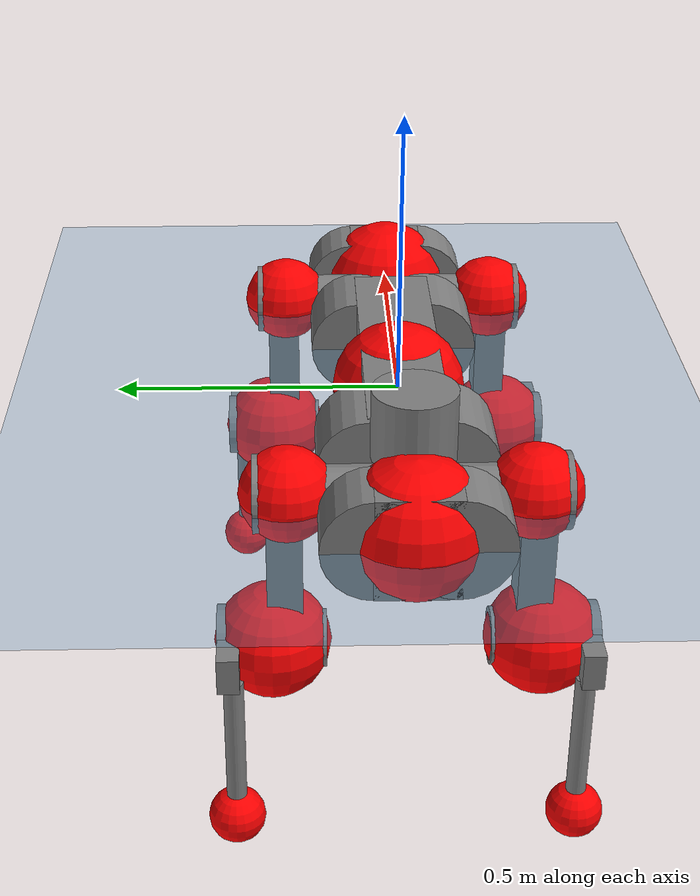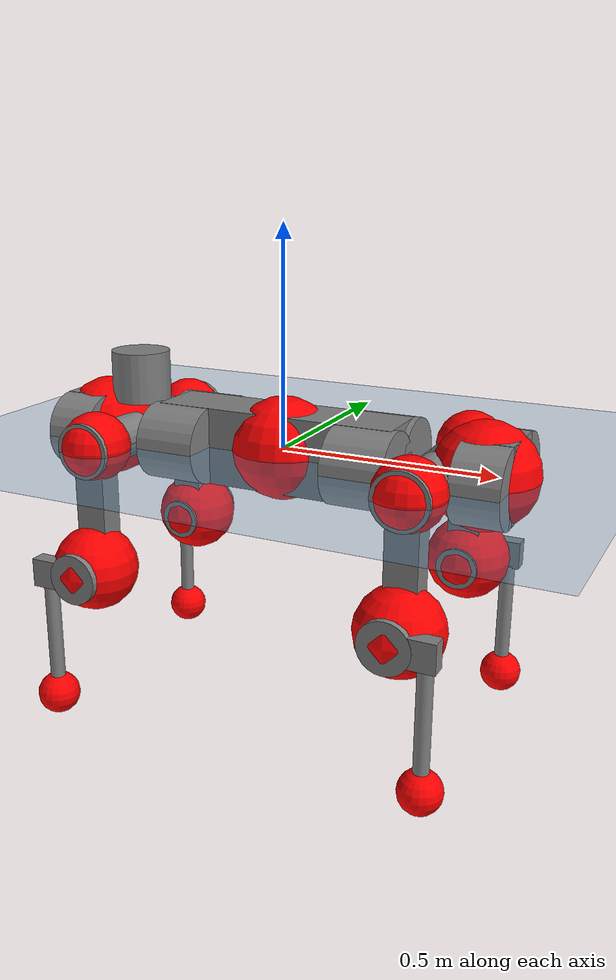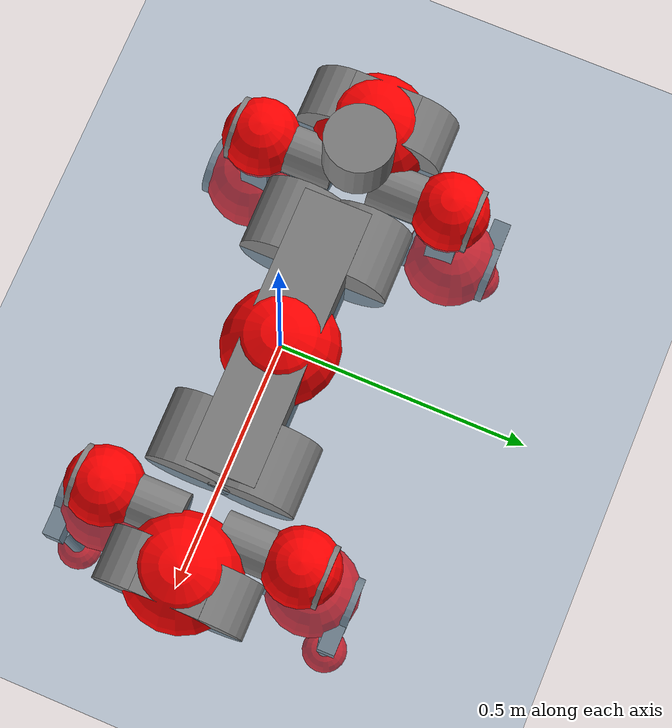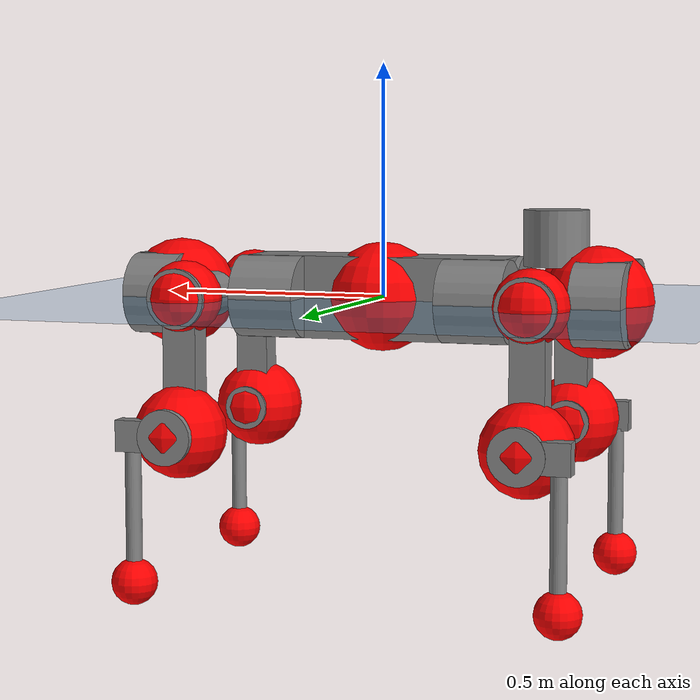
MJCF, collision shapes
<mujoco model="anymal_c">
  <compiler angle="radian" assetdir="assets" balanceinertia="true" inertiafromgeom="false"/>

  <option timestep="0.005" density="1.2" viscosity="2e-05"/>

  <size nkey="1"/>

  <visual>
    <quality shadowsize="8192"/>
    <map shadowclip="0.5"/>
  </visual>

  <default>
    <default class="/">
      <material specular="0" shininess="0.25"/>
      <geom contype="0" conaffinity="0" group="1" solref="-1000 -80"/>
      <site size="0.01 0.005 0.005" group="5"/>
      <general forcelimited="true" forcerange="-80 80" biastype="affine" gainprm="80" biasprm="0 -80 -2"/>
      <default class="anymal_c">
        <joint armature="0.01" damping="0.01" frictionloss="0.1"/>
        <default class="visual">
          <geom type="mesh" group="2"/>
          <default class="visual_zflip"/>
        </default>
        <default class="collision">
          <geom type="cylinder" group="3"/>
          <default class="foot">
            <geom size="0.03 0 0" type="sphere" condim="6" priority="1" friction="0.8 0.02 0.01" solimp="0.015 1 0.03"/>
          </default>
        </default>
      </default>
      <default class="reward_collision_sphere">
        <geom group="5" rgba="1 0 0 1"/>
      </default>
    </default>
  </default>

  <asset>
    <texture type="skybox" colorspace="auto" name="//unnamed_texture_0" builtin="gradient" rgb1="0.95 0.95 0.95" rgb2="0.95 0.95 0.95" width="100" height="600"/>
    <texture type="2d" colorspace="auto" name="texplane" builtin="checker" rgb1="0.345 0.575 0.748" rgb2="0.345 0.575 0.748" markrgb="1 1 1" width="512" height="512"/>
    <texture type="2d" colorspace="linear" name="base" file="base.png"/>
    <texture type="2d" colorspace="linear" name="top_shell" file="top_shell.png"/>
    <texture type="2d" colorspace="linear" name="bottom_shell" file="bottom_shell.png"/>
    <texture type="2d" colorspace="linear" name="remote" file="remote.png"/>
    <texture type="2d" colorspace="linear" name="hatch" file="hatch.png"/>
    <texture type="2d" colorspace="linear" name="handle" file="handle.png"/>
    <texture type="2d" colorspace="linear" name="face" file="face.png"/>
    <texture type="2d" colorspace="linear" name="battery" file="battery.png"/>
    <texture type="2d" colorspace="linear" name="lidar_cage" file="lidar_cage.png"/>
    <texture type="2d" colorspace="linear" name="depth_camera" file="depth_camera.png"/>
    <texture type="2d" colorspace="linear" name="wide_angle_camera" file="wide_angle_camera.png"/>
    <texture type="2d" colorspace="linear" name="lidar" file="lidar.png"/>
    <texture type="2d" colorspace="linear" name="drive" file="drive.png"/>
    <texture type="2d" colorspace="linear" name="hip_l" file="hip_l.png"/>
    <texture type="2d" colorspace="linear" name="shank_l" file="shank_l.png"/>
    <texture type="2d" colorspace="linear" name="foot" file="foot.png"/>
    <texture type="2d" colorspace="linear" name="thigh" file="thigh.png"/>
    <texture type="2d" colorspace="linear" name="shank_r" file="shank_r.png"/>
    <texture type="2d" colorspace="linear" name="hip_r" file="hip_r.png"/>
    <material name="MatPlane" class="/" texture="texplane" texuniform="true" texrepeat="2 2" specular="0.9" shininess="0.5"/>
    <material name="black_plastic" class="/" rgba="0.007 0.007 0.007 1"/>
    <material name="green" class="/" rgba="0.052 0.178 0.033 1"/>
    <material name="red" class="/" rgba="0.178 0.006 0.005 1"/>
    <material name="yellow" class="/" rgba="0.178 0.119 0.006 1"/>
    <material name="lwl" class="/" rgba="0.8 0.8 0.8 1"/>
    <material name="base" class="/" texture="base"/>
    <material name="top_shell" class="/" texture="top_shell"/>
    <material name="bottom_shell" class="/" texture="bottom_shell"/>
    <material name="hip_l" class="/" texture="hip_l"/>
    <material name="thigh" class="/" texture="thigh"/>
    <material name="shank_l" class="/" texture="shank_l"/>
    <material name="foot" class="/" texture="foot"/>
    <material name="hip_r" class="/" texture="hip_r"/>
    <material name="shank" class="/" texture="shank_r"/>
    <material name="hatch" class="/" texture="hatch"/>
    <material name="remote" class="/" texture="remote"/>
    <material name="handle" class="/" texture="handle"/>
    <material name="face" class="/" texture="face"/>
    <material name="depth_camera" class="/" texture="depth_camera"/>
    <material name="wide_angle_camera" class="/" texture="wide_angle_camera"/>
    <material name="battery" class="/" texture="battery"/>
    <material name="lidar_cage" class="/" texture="lidar_cage"/>
    <material name="lidar" class="/" texture="lidar"/>
    <material name="drive" class="/" texture="drive"/>
    <mesh name="base_0" class="/" file="base_0.obj"/>
    <mesh name="base_1" class="/" file="base_1.obj"/>
    <mesh name="base_2" class="/" file="base_2.obj"/>
    <mesh name="base_3" class="/" file="base_3.obj"/>
    <mesh name="base_4" class="/" file="base_4.obj"/>
    <mesh name="base_5" class="/" file="base_5.obj"/>
    <mesh name="top_shell" class="/" file="top_shell.obj"/>
    <mesh name="bottom_shell" class="/" file="bottom_shell.obj"/>
    <mesh name="remote" class="/" file="remote.obj"/>
    <mesh name="handle" class="/" file="handle.obj"/>
    <mesh name="face" class="/" file="face.obj"/>
    <mesh name="wide_angle_camera" class="/" file="wide_angle_camera.obj"/>
    <mesh name="depth_camera" class="/" file="depth_camera.obj"/>
    <mesh name="battery" class="/" file="battery.obj"/>
    <mesh name="lidar_cage" class="/" file="lidar_cage.obj"/>
    <mesh name="lidar" class="/" file="lidar.obj"/>
    <mesh name="drive" class="/" file="drive.obj"/>
    <mesh name="hip_l" class="/" file="hip_l.obj"/>
    <mesh name="thigh" class="/" file="thigh.obj"/>
    <mesh name="shank_l" class="/" file="shank_l.obj"/>
    <mesh name="foot" class="/" file="foot.obj"/>
    <mesh name="hip_r" class="/" file="hip_r.obj"/>
    <mesh name="hatch" class="/" file="hatch.obj"/>
    <mesh name="shank_r" class="/" file="shank_r.obj"/>
  </asset>

  <worldbody>
    <geom name="floor" class="/" size="100 100 0.125" type="plane" group="0" material="MatPlane"/>
    <light name="toplight_shadow" class="/" pos="0 0 5" dir="0.0990148 0.0990148 -0.990148" type="directional" ambient="0.04 0.04 0.04" diffuse="0.55 0.55 0.55" specular="0.12 0.12 0.12"/>
    <light name="toplight_fill" class="/" pos="0 0 5" dir="0.0990148 0.0990148 -0.990148" type="directional" castshadow="false" ambient="0.04 0.04 0.04" diffuse="0.3 0.3 0.3" specular="0.08 0.08 0.08"/>
    <body name="trunk" childclass="anymal_c" pos="0.000903291 0.000292357 0.000758296" quat="1 8.4354e-05 -0.00010206 0.00012916">
      <inertial pos="0.0017222 -0.000503109 0.0486222" quat="0.501699 0.499573 0.50044 0.498282" mass="18.1014" diaginertia="0.80326 0.403662 0.210873"/>
      <joint name="//unnamed_joint_0" type="free" armature="0" damping="0" frictionloss="0"/>
      <geom name="//unnamed_geom_1" class="visual" material="green" mesh="base_0"/>
      <geom name="//unnamed_geom_2" class="visual" material="yellow" mesh="base_1"/>
      <geom name="//unnamed_geom_3" class="visual" material="red" mesh="base_2"/>
      <geom name="//unnamed_geom_4" class="visual" material="black_plastic" mesh="base_3"/>
      <geom name="//unnamed_geom_5" class="visual" material="lwl" mesh="base_4"/>
      <geom name="//unnamed_geom_6" class="visual" material="base" mesh="base_5"/>
      <geom name="trunk_1" class="collision" size="0.28561 0.0689404 0.0886376" type="box"/>
      <geom name="trunk_2" class="collision" size="0.0886376 0.0714025" pos="0.227422 0.0640877 0" quat="0.707107 0 0.707107 0"/>
      <geom name="trunk_3" class="collision" size="0.0886376 0.0714025" pos="-0.227422 0.0640877 0" quat="0.707107 0 0.707107 0"/>
      <geom name="trunk_4" class="collision" size="0.0886376 0.0714025" pos="0.227422 -0.0640877 0" quat="0.707107 0 0.707107 0"/>
      <geom name="trunk_5" class="collision" size="0.0886376 0.0714025" pos="-0.227422 -0.0640877 0" quat="0.707107 0 0.707107 0"/>
      <geom name="//unnamed_geom_12" class="visual" material="top_shell" mesh="top_shell"/>
      <geom name="//unnamed_geom_13" class="visual" material="bottom_shell" mesh="bottom_shell"/>
      <geom name="//unnamed_geom_14" class="visual" material="remote" mesh="remote"/>
      <geom name="//unnamed_geom_15" class="visual" material="handle" mesh="handle"/>
      <geom name="//unnamed_geom_16" class="visual" pos="0.433409 0 0" quat="1 0 0 0" material="face" mesh="face"/>
      <geom name="trunk_6" class="collision" size="0.0541674 0.0689404 0.0886376" pos="0.490918 0 0" type="box"/>
      <geom name="//unnamed_geom_18" class="collision" size="0.0886376 0.0541674" pos="0.490918 0.0640877 0" quat="0.707107 0 0.707107 0"/>
      <geom name="//unnamed_geom_19" class="collision" size="0.0886376 0.0541674" pos="0.490918 -0.0640877 0" quat="0.707107 0 0.707107 0"/>
      <geom name="//unnamed_geom_20" class="visual" pos="0.482708 0 -0.0286114" quat="0.965926 0 0.258819 0" material="depth_camera" mesh="depth_camera"/>
      <geom name="//unnamed_geom_21" class="visual" pos="0.536403 0 0.0148716" material="wide_angle_camera" mesh="wide_angle_camera"/>
      <geom name="//unnamed_geom_22" class="visual_zflip" pos="-0.433409 0 0" quat="0 0 0 1" material="face" mesh="face"/>
      <geom name="trunk_7" class="collision" size="0.0541674 0.0689404 0.0886376" pos="-0.490918 0 0" quat="0 0 0 1" type="box"/>
      <geom name="//unnamed_geom_24" class="collision" size="0.0886376 0.0541674" pos="-0.490918 -0.0640877 0" quat="0 -0.707107 0 0.707107"/>
      <geom name="//unnamed_geom_25" class="collision" size="0.0886376 0.0541674" pos="-0.490918 0.0640877 0" quat="0 -0.707107 0 0.707107"/>
      <geom name="//unnamed_geom_26" class="visual" pos="-0.482708 0 -0.0286114" quat="0 -0.258819 0 0.965926" material="depth_camera" mesh="depth_camera"/>
      <geom name="//unnamed_geom_27" class="visual_zflip" pos="-0.536403 0 0.0148716" quat="0 0 0 1" material="wide_angle_camera" mesh="wide_angle_camera"/>
      <geom name="//unnamed_geom_28" class="visual" material="battery" mesh="battery"/>
      <geom name="//unnamed_geom_29" class="visual" pos="0 0.068293 0.0292557" quat="0.683013 -0.183013 0.183013 0.683013" material="depth_camera" mesh="depth_camera"/>
      <geom name="//unnamed_geom_30" class="visual" pos="0 -0.068293 0.0292557" quat="0.683013 0.183013 0.183013 -0.683013" material="depth_camera" mesh="depth_camera"/>
      <geom name="//unnamed_geom_31" class="visual" pos="-0.380606 0 0.073017" quat="1 0 0 0" material="lidar_cage" mesh="lidar_cage"/>
      <geom name="trunk_8" class="collision" size="0.0689404 0.0590917" pos="-0.380606 0 0.132623"/>
      <geom name="//unnamed_geom_33" class="visual" pos="-0.380606 -5.11053e-05 0.141265" quat="0.707107 0 0 -0.707107" material="lidar" mesh="lidar"/>
      <geom name="//unnamed_geom_34" class="visual" pos="0.313581 0.0952437 -1.3436e-09" quat="0.258819 0.965926 0 0" material="drive" mesh="drive"/>
      <geom name="//unnamed_geom_35" class="visual" pos="0.313581 -0.0952437 1.3436e-09" quat="0.258819 -0.965926 0 0" material="drive" mesh="drive"/>
      <geom name="//unnamed_geom_36" class="visual" pos="-0.313581 0.0952437 1.3436e-09" quat="0 0 0.965926 -0.258819" material="drive" mesh="drive"/>
      <geom name="//unnamed_geom_37" class="visual" pos="-0.313581 -0.0952437 -1.3436e-09" quat="0 0 -0.965926 -0.258819" material="drive" mesh="drive"/>
      <geom name="//unnamed_geom_38" class="visual" pos="0.121292 0 0.0725203" quat="1 0 0 0" material="hatch" mesh="hatch"/>
      <geom name="//unnamed_geom_39" class="reward_collision_sphere" size="0.118183"/>
      <geom name="//unnamed_geom_40" class="reward_collision_sphere" size="0.118183" pos="0.470529 0 0"/>
      <geom name="//unnamed_geom_41" class="reward_collision_sphere" size="0.118183" pos="-0.470529 0 0"/>
      <site name="imu" pos="0.261284 0.00320563 0.046988" size="0.00984862"/>
      <camera name="track" pos="0 -1.83108 0" quat="0.707107 0.707107 0 0" mode="trackcom"/>
      <camera name="ego_camera" pos="0.470529 0 -0.0397371" quat="-0.5 -0.5 0.5 0.5"/>
      <body name="LF_HIP" pos="0.313968 0.0947279 0.000206604" quat="0.258998 0.965878 -0.00019053 -0.000125081">
        <inertial pos="0.0597353 -0.0130714 -0.00842495" quat="-0.128109 0.709532 -0.135491 0.679555" mass="2.69745" diaginertia="0.00745039 0.00314854 0.00318301"/>
        <joint name="LF_HAA" pos="0 0 0" axis="0.999976 0.00685143 -0.000523976" range="-0.704626 0.486414" armature="0.00979891" damping="0.00599223" frictionloss="0.0982909"/>
        <geom name="//unnamed_geom_42" class="visual" pos="0 -7.9038e-05 1.29819e-05" quat="0.258819 -0.965926 0 0" material="hip_l" mesh="hip_l"/>
        <geom name="//unnamed_geom_43" class="visual" pos="0.0626326 -0.0742077 -0.04342" quat="0.183013 -0.683013 0.683013 0.183013" material="drive" mesh="drive"/>
        <geom name="//unnamed_geom_44" class="collision" size="0.0492431 0.0689404" pos="0.0626326 -0.0109497 -0.00685962" quat="-0.353553 -0.612372 0.612372 -0.353553"/>
        <body name="LF_THIGH" pos="0.0620465 -0.0668902 -0.0430269" quat="0.183065 -0.682984 0.683023 0.183029">
          <inertial pos="0.0317436 0.000965749 -0.244336" quat="0.993161 -0.00511391 -0.0806936 0.0842181" mass="2.96776" diaginertia="0.0377195 0.0193124 0.00413405"/>
          <joint name="LF_HFE" pos="0 0 0" axis="0.999999 0.000317603 0.00107791" range="-3.15339 3.13819" armature="0.00997464" damping="0.0102202" frictionloss="0.0994296"/>
          <geom name="//unnamed_geom_45" class="visual" pos="0.0025881 4.07824e-06 0" quat="0.707107 0 0 -0.707107" material="thigh" mesh="thigh"/>
          <geom name="//unnamed_geom_46" class="collision" size="0.064016 0.0393945" pos="0.0418248 0 0" quat="0.5 0.5 -0.5 -0.5"/>
          <geom name="//unnamed_geom_47" class="collision" size="0.0369323 0.0295459 0.139175" pos="0.0313686 0 -0.140385" quat="0.707107 0 0 -0.707107" type="box"/>
          <geom name="//unnamed_geom_48" class="visual" pos="0.104876 0 -0.283127" quat="1 0 0 0" material="drive" mesh="drive"/>
          <geom name="//unnamed_geom_49" class="collision" size="0.0492431 0.0689404" pos="0.0316823 0 -0.283127" quat="0.707107 0 0.707107 0"/>
          <geom name="//unnamed_geom_50" class="reward_collision_sphere" size="0.078789" pos="0.0261405 0 0"/>
          <body name="LF_SHANK" pos="0.105013 -0.000593513 -0.283312" quat="1 0.000384092 0.00010679 -7.40225e-05">
            <inertial pos="0.00599088 -0.0560648 -0.0809621" quat="0.992911 -0.115661 -0.000200629 -0.0273827" mass="0.562532" diaginertia="0.0130104 0.00595448 0.00109821"/>
            <joint name="LF_KFE" pos="0 0 0" axis="0.999993 -0.00262272 0.00262044" range="-3.14625 3.13345" armature="0.00947785" damping="0.00811979" frictionloss="0.0942136"/>
            <geom name="//unnamed_geom_51" class="visual" pos="0.000843923 0.00449984 0" quat="0.707107 0 0 -0.707107" material="shank_l" mesh="shank_l"/>
            <geom name="LF_kfe_act" class="collision" size="0.0590917 0.0196972" pos="0.0209124 0 0" quat="0.5 0.5 -0.5 -0.5"/>
            <geom name="//unnamed_geom_53" class="collision" size="0.0566286 0.0332391 0.0187124" pos="0.0209124 -0.0526426 0" quat="0.5 0.5 -0.5 -0.5" type="box"/>
            <geom name="//unnamed_geom_54" class="visual" pos="0.0136451 -0.0790715 -0.335749" quat="0.382683 0 0 -0.92388" material="foot" mesh="foot"/>
            <geom name="LF_calf" class="collision" size="0.0172351 0.139114" pos="0.0136453 -0.0805216 -0.167874" quat="0.707107 0 0 -0.707107"/>
            <geom name="LF_foot" class="foot" size="0.0309198" pos="0.0136453 -0.0805216 -0.313397" quat="0.707107 0 0 -0.707107"/>
            <geom name="//unnamed_geom_57" class="reward_collision_sphere" size="0.0984862" pos="-0.052281 0 0"/>
            <geom name="//unnamed_geom_58" class="reward_collision_sphere" size="0.0492431" pos="0.0136453 -0.0805216 -0.313397"/>
            <site name="LF_foot" class="foot" pos="0.0136453 -0.0805216 -0.313397" quat="0.707107 0 0 -0.707107" size="0.00984862"/>
          </body>
        </body>
      </body>
      <body name="RF_HIP" pos="0.314462 -0.0958338 -2.76453e-05" quat="0.258912 -0.965901 -0.000191878 2.95152e-05">
        <inertial pos="0.0584966 0.0144182 -0.00821846" quat="0.134249 0.679418 0.128185 0.709886" mass="2.66349" diaginertia="0.00745826 0.00320209 0.0032534"/>
        <joint name="RF_HAA" pos="0 0 0" axis="0.999983 -0.00546938 0.00189864" stiffness="0.000226431" range="-0.494978 0.721514" armature="0.00991596" damping="0.00812329" frictionloss="0.0991914"/>
        <geom name="//unnamed_geom_59" class="visual" pos="0 7.90374e-05 1.29819e-05" quat="0.258819 0.965926 0 0" material="hip_r" mesh="hip_r"/>
        <geom name="//unnamed_geom_60" class="visual" pos="0.0626326 0.0742077 -0.04342" quat="0.183013 0.683013 0.683013 -0.183013" material="drive" mesh="drive"/>
        <geom name="//unnamed_geom_61" class="collision" size="0.0492431 0.0689404" pos="0.0626326 0.0109497 -0.00685962" quat="-0.353553 0.612372 0.612372 0.353553"/>
        <body name="RF_THIGH" pos="0.0627834 0.0656117 -0.0420881" quat="0.183118 0.683064 0.682978 -0.182843">
          <inertial pos="0.0313805 0.000449398 -0.243702" quat="0.992423 -0.00829019 -0.0822683 0.0908802" mass="2.92991" diaginertia="0.0382636 0.0194329 0.00407728"/>
          <joint name="RF_HFE" pos="0 0 0" axis="1 -0.000413764 0.000113007" range="-3.14789 3.13254" armature="0.00989014" damping="0.00768372" frictionloss="0.0952583"/>
          <geom name="//unnamed_geom_62" class="visual" pos="0.0025881 4.07824e-06 0" quat="0.707107 0 0 -0.707107" material="thigh" mesh="thigh"/>
          <geom name="//unnamed_geom_63" class="collision" size="0.064016 0.0393945" pos="0.0418248 0 0" quat="0.5 0.5 0.5 0.5"/>
          <geom name="//unnamed_geom_64" class="collision" size="0.0369323 0.0295459 0.139175" pos="0.0313686 0 -0.140385" quat="0.707107 0 0 0.707107" type="box"/>
          <geom name="//unnamed_geom_65" class="visual" pos="0.104876 0 -0.283127" quat="1 0 0 0" material="drive" mesh="drive"/>
          <geom name="//unnamed_geom_66" class="collision" size="0.0492431 0.0689404" pos="0.0316823 0 -0.283127" quat="0.707107 0 0.707107 0"/>
          <geom name="//unnamed_geom_67" class="reward_collision_sphere" size="0.078789" pos="0.0261405 0 0"/>
          <body name="RF_SHANK" pos="0.104704 0.000545977 -0.282594" quat="1 -4.19414e-07 1.52421e-06 7.75479e-07">
            <inertial pos="0.00595237 0.0558012 -0.0797366" quat="0.992878 0.116448 -0.000822897 0.025151" mass="0.563333" diaginertia="0.0126843 0.00593904 0.00109116"/>
            <joint name="RF_KFE" pos="0 0 0" axis="1 -0.000189139 0.000172409" range="-3.13648 3.12217" armature="0.00993774" damping="0.00546692" frictionloss="0.10086"/>
            <geom name="//unnamed_geom_68" class="visual" pos="0.000843918 -0.00449983 0" quat="0.707107 0 0 0.707107" material="shank" mesh="shank_r"/>
            <geom name="RF_kfe_act" class="collision" size="0.0590917 0.0196972" pos="0.0209124 0 0" quat="0.5 0.5 0.5 0.5"/>
            <geom name="//unnamed_geom_70" class="collision" size="0.0566286 0.0332391 0.0187124" pos="0.0209124 0.0526426 0" quat="0.5 0.5 0.5 0.5" type="box"/>
            <geom name="//unnamed_geom_71" class="visual" pos="0.0136455 0.0790715 -0.335749" quat="0.382683 0 0 0.92388" material="foot" mesh="foot"/>
            <geom name="RF_calf" class="collision" size="0.0172351 0.139114" pos="0.0136453 0.0805216 -0.167874" quat="0.707107 0 0 0.707107"/>
            <geom name="RF_foot" class="foot" size="0.0297082" pos="0.0136453 0.0805216 -0.313397" quat="0.707107 0 0 0.707107"/>
            <geom name="//unnamed_geom_74" class="reward_collision_sphere" size="0.0984862" pos="-0.052281 0 0"/>
            <geom name="//unnamed_geom_75" class="reward_collision_sphere" size="0.0492431" pos="0.0136453 0.0805216 -0.313397"/>
            <site name="RF_foot" class="foot" pos="0.0136453 0.0805216 -0.313397" quat="0.707107 0 0 0.707107" size="0.00984862"/>
          </body>
        </body>
      </body>
      <body name="LH_HIP" pos="-0.313215 0.0955049 0.00100269" quat="-5.37191e-05 -3.1054e-05 0.965932 -0.258795">
        <inertial pos="0.0590013 0.0143067 -0.00768114" quat="0.135158 0.681065 0.123372 0.708987" mass="2.68771" diaginertia="0.0073508 0.00318247 0.00321262"/>
        <joint name="LH_HAA" pos="0 0 0" axis="1 -3.64924e-05 -0.000317267" range="-0.500328 0.73975" armature="0.009984" damping="0.00885811" frictionloss="0.0991277"/>
        <geom name="//unnamed_geom_76" class="visual" pos="0 7.90374e-05 1.29819e-05" quat="-0.258819 -0.965926 0 0" material="hip_r" mesh="hip_r"/>
        <geom name="//unnamed_geom_77" class="visual" pos="0.0626326 0.0742077 -0.04342" quat="0.183013 0.683013 0.683013 -0.183013" material="drive" mesh="drive"/>
        <geom name="//unnamed_geom_78" class="collision" size="0.0492431 0.0689404" pos="0.0626326 0.0109497 -0.00685962" quat="-0.353553 0.612372 0.612372 0.353553"/>
        <body name="LH_THIGH" pos="0.0623046 0.0666325 -0.0420773" quat="0.182739 0.683074 0.683071 -0.182843">
          <inertial pos="0.0322009 -0.000190811 -0.243479" quat="0.992881 -0.00578 -0.0802708 0.0878145" mass="2.96414" diaginertia="0.0378229 0.0193962 0.00401969"/>
          <joint name="LH_HFE" pos="0 0 0" axis="0.999987 0.00392726 0.00323639" range="-3.14801 3.13424" armature="0.00954393" damping="0.0134234" frictionloss="0.0988705"/>
          <geom name="//unnamed_geom_79" class="visual" pos="0.0025881 4.07824e-06 0" quat="0.707107 0 0 -0.707107" material="thigh" mesh="thigh"/>
          <geom name="//unnamed_geom_80" class="collision" size="0.064016 0.0393945" pos="0.0418248 0 0" quat="0.5 0.5 -0.5 -0.5"/>
          <geom name="//unnamed_geom_81" class="collision" size="0.0369323 0.0295459 0.139175" pos="0.0313686 0 -0.140385" quat="0.707107 0 0 -0.707107" type="box"/>
          <geom name="//unnamed_geom_82" class="visual" pos="0.104876 0 -0.283127" quat="1 0 0 0" material="drive" mesh="drive"/>
          <geom name="//unnamed_geom_83" class="collision" size="0.0492431 0.0689404" pos="0.0316823 0 -0.283127" quat="0.707107 0 0.707107 0"/>
          <geom name="//unnamed_geom_84" class="reward_collision_sphere" size="0.078789" pos="0.0261405 0 0"/>
          <body name="LH_SHANK" pos="0.10497 -0.000361278 -0.283664" quat="1 5.12286e-05 -8.14666e-05 -4.14959e-05">
            <inertial pos="0.0059173 0.0567334 -0.0803941" quat="0.992641 0.118351 0.00252899 0.0255" mass="0.561215" diaginertia="0.0128276 0.00591235 0.00107069"/>
            <joint name="LH_KFE" pos="0 0 0" axis="0.999998 -0.0018025 0.00028934" range="-3.14539 3.1277" armature="0.00943095" damping="0.012887" frictionloss="0.101655"/>
            <geom name="//unnamed_geom_85" class="visual" pos="0.000843918 -0.00449983 0" quat="-0.707107 0 0 -0.707107" material="shank" mesh="shank_r"/>
            <geom name="LH_kfe_act" class="collision" size="0.0590917 0.0196972" pos="0.0209124 0 0" quat="0.5 0.5 -0.5 -0.5"/>
            <geom name="//unnamed_geom_87" class="collision" size="0.0566286 0.0332391 0.0187124" pos="0.0209124 0.0526426 0" quat="0.5 0.5 -0.5 -0.5" type="box"/>
            <geom name="//unnamed_geom_88" class="visual" pos="0.0136455 0.0790715 -0.335749" quat="-0.382683 0 0 -0.92388" material="foot" mesh="foot"/>
            <geom name="LH_calf" class="collision" size="0.0172351 0.139114" pos="0.0136453 0.0805216 -0.167874" quat="0.707107 0 0 -0.707107"/>
            <geom name="LH_foot" class="foot" size="0.0306046" pos="0.0136453 0.0805216 -0.313397" quat="0.707107 0 0 -0.707107"/>
            <geom name="//unnamed_geom_91" class="reward_collision_sphere" size="0.0984862" pos="-0.052281 0 0"/>
            <geom name="//unnamed_geom_92" class="reward_collision_sphere" size="0.0492431" pos="0.0136453 0.0805216 -0.313397"/>
            <site name="LH_foot" class="foot" pos="0.0136453 0.0805216 -0.313397" quat="0.707107 0 0 -0.707107" size="0.00984862"/>
          </body>
        </body>
      </body>
      <body name="RH_HIP" pos="-0.313486 -0.0945017 0.000605162" quat="0.000232266 -9.45211e-05 -0.966012 -0.258498">
        <inertial pos="0.0599273 -0.0147204 -0.0091163" quat="-0.128831 0.711824 -0.13672 0.676769" mass="2.65211" diaginertia="0.00729942 0.00316586 0.00318931"/>
        <joint name="RH_HAA" pos="0 0 0" axis="0.999985 0.00311751 -0.00449172" range="-0.726356 0.500222" armature="0.0102312" damping="0.00940257" frictionloss="0.100908"/>
        <geom name="//unnamed_geom_93" class="visual" pos="0 -7.9038e-05 1.29819e-05" quat="-0.258819 0.965926 0 0" material="hip_l" mesh="hip_l"/>
        <geom name="//unnamed_geom_94" class="visual" pos="0.0626326 -0.0742077 -0.04342" quat="-0.183013 0.683013 -0.683013 -0.183013" material="drive" mesh="drive"/>
        <geom name="//unnamed_geom_95" class="collision" size="0.0492431 0.0689404" pos="0.0626326 -0.0109497 -0.00685962" quat="0.353553 0.612372 -0.612372 0.353553"/>
        <body name="RH_THIGH" pos="0.0620787 -0.0655742 -0.042453" quat="-0.183009 0.683015 -0.683011 -0.183015">
          <inertial pos="0.0323541 -0.000135912 -0.243955" quat="0.993207 -0.00496772 -0.0810428 0.083348" mass="2.93476" diaginertia="0.03758 0.0190148 0.00403844"/>
          <joint name="RH_HFE" pos="0 0 0" axis="1 0.000161462 7.2771e-05" range="-3.14067 3.14333" armature="0.00987858" damping="0.00895797" frictionloss="0.100936"/>
          <geom name="//unnamed_geom_96" class="visual" pos="0.0025881 4.07824e-06 0" quat="0.707107 0 0 -0.707107" material="thigh" mesh="thigh"/>
          <geom name="//unnamed_geom_97" class="collision" size="0.064016 0.0393945" pos="0.0418248 0 0" quat="0.5 0.5 0.5 0.5"/>
          <geom name="//unnamed_geom_98" class="collision" size="0.0369323 0.0295459 0.139175" pos="0.0313686 0 -0.140385" quat="0.707107 0 0 0.707107" type="box"/>
          <geom name="//unnamed_geom_99" class="visual" pos="0.104876 0 -0.283127" quat="1 0 0 0" material="drive" mesh="drive"/>
          <geom name="//unnamed_geom_100" class="collision" size="0.0492431 0.0689404" pos="0.0316823 0 -0.283127" quat="0.707107 0 0.707107 0"/>
          <geom name="//unnamed_geom_101" class="reward_collision_sphere" size="0.078789" pos="0.0261405 0 0"/>
          <body name="RH_SHANK" pos="0.104156 0.000130314 -0.284594" quat="1 8.79886e-05 2.75626e-05 7.23841e-05">
            <inertial pos="0.006444 -0.0556979 -0.0801896" quat="0.993139 -0.114117 0.00298946 -0.0253681" mass="0.564411" diaginertia="0.0126542 0.00594965 0.00107955"/>
            <joint name="RH_KFE" pos="0 0 0" axis="0.999981 0.00516516 0.00327946" range="-3.13569 3.13256" armature="0.00970469" damping="0.00863126" frictionloss="0.0971001"/>
            <geom name="//unnamed_geom_102" class="visual" pos="0.000843923 0.00449984 0" quat="0.707107 0 0 -0.707107" material="shank_l" mesh="shank_l"/>
            <geom name="RH_kfe_act" class="collision" size="0.0590917 0.0196972" pos="0.0209124 0 0" quat="0.5 0.5 0.5 0.5"/>
            <geom name="//unnamed_geom_104" class="collision" size="0.0566286 0.0332391 0.0187124" pos="0.0209124 -0.0526426 0" quat="0.5 0.5 0.5 0.5" type="box"/>
            <geom name="//unnamed_geom_105" class="visual" pos="0.0136451 -0.0790715 -0.335749" quat="0.382683 0 0 -0.92388" material="foot" mesh="foot"/>
            <geom name="RH_calf" class="collision" size="0.0172351 0.139114" pos="0.0136453 -0.0805216 -0.167874" quat="0.707107 0 0 0.707107"/>
            <geom name="RH_foot" class="foot" size="0.0272034" pos="0.0136453 -0.0805216 -0.313397" quat="0.707107 0 0 0.707107"/>
            <geom name="//unnamed_geom_108" class="reward_collision_sphere" size="0.0984862" pos="-0.052281 0 0"/>
            <geom name="//unnamed_geom_109" class="reward_collision_sphere" size="0.0492431" pos="0.0136453 -0.0805216 -0.313397"/>
            <site name="RH_foot" class="foot" pos="0.0136453 -0.0805216 -0.313397" quat="0.707107 0 0 0.707107" size="0.00984862"/>
          </body>
        </body>
      </body>
    </body>
  </worldbody>

  <contact>
    <pair class="/" geom1="floor" geom2="LF_foot" name="//unnamed_contact_0"/>
    <pair class="/" geom1="floor" geom2="RF_foot" name="//unnamed_contact_1"/>
    <pair class="/" geom1="floor" geom2="LH_foot" name="//unnamed_contact_2"/>
    <pair class="/" geom1="floor" geom2="RH_foot" name="//unnamed_contact_3"/>
  </contact>

  <actuator>
    <general name="LF_HAA" class="/" joint="LF_HAA" forcerange="-79.3203 79.3203" gainprm="78.9" biasprm="0 -78.9 -1.89653"/>
    <general name="LF_HFE" class="/" joint="LF_HFE" forcerange="-81.4714 81.4714" gainprm="78.9" biasprm="0 -78.9 -1.89653"/>
    <general name="LF_KFE" class="/" joint="LF_KFE" forcerange="-79.5479 79.5479" gainprm="78.9" biasprm="0 -78.9 -1.89653"/>
    <general name="RF_HAA" class="/" joint="RF_HAA" forcerange="-79.0081 79.0081" gainprm="78.9" biasprm="0 -78.9 -1.89653"/>
    <general name="RF_HFE" class="/" joint="RF_HFE" forcerange="-77.1007 77.1007" gainprm="78.9" biasprm="0 -78.9 -1.89653"/>
    <general name="RF_KFE" class="/" joint="RF_KFE" forcerange="-79.2763 79.2763" gainprm="78.9" biasprm="0 -78.9 -1.89653"/>
    <general name="LH_HAA" class="/" joint="LH_HAA" forcerange="-81.2986 81.2986" gainprm="78.9" biasprm="0 -78.9 -1.89653"/>
    <general name="LH_HFE" class="/" joint="LH_HFE" forcerange="-81.1842 81.1842" gainprm="78.9" biasprm="0 -78.9 -1.89653"/>
    <general name="LH_KFE" class="/" joint="LH_KFE" forcerange="-78.6654 78.6654" gainprm="78.9" biasprm="0 -78.9 -1.89653"/>
    <general name="RH_HAA" class="/" joint="RH_HAA" forcerange="-81.6024 81.6024" gainprm="78.9" biasprm="0 -78.9 -1.89653"/>
    <general name="RH_HFE" class="/" joint="RH_HFE" forcerange="-80.5522 80.5522" gainprm="78.9" biasprm="0 -78.9 -1.89653"/>
    <general name="RH_KFE" class="/" joint="RH_KFE" forcerange="-79.6952 79.6952" gainprm="78.9" biasprm="0 -78.9 -1.89653"/>
  </actuator>

  <sensor>
    <gyro site="imu" name="imu_angular_velocity"/>
    <velocimeter site="imu" name="imu_linear_velocity"/>
    <framelinvel objtype="site" objname="LF_foot" name="LF_foot_global_linear_velocity"/>
    <framelinvel objtype="site" objname="RF_foot" name="RF_foot_global_linear_velocity"/>
    <framelinvel objtype="site" objname="LH_foot" name="LH_foot_global_linear_velocity"/>
    <framelinvel objtype="site" objname="RH_foot" name="RH_foot_global_linear_velocity"/>
  </sensor>

  <keyframe>
    <key name="home" qpos="0 0 0.55 1 0 0 0 0 0.4 -0.8 0 -0.4 0.8 0 -0.4 0.8 0 0.4 -0.8"/>
  </keyframe>
</mujoco>
